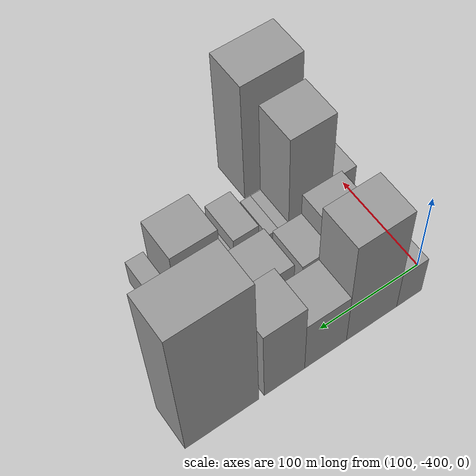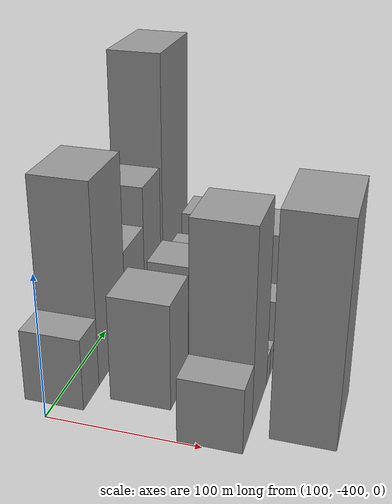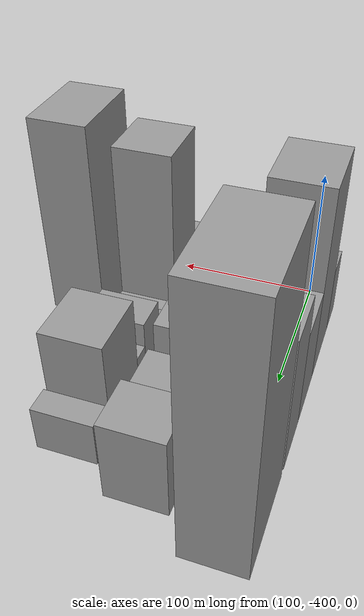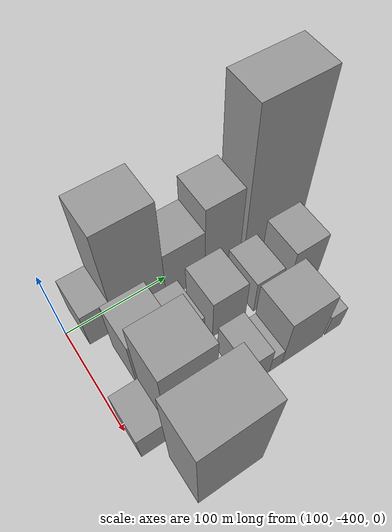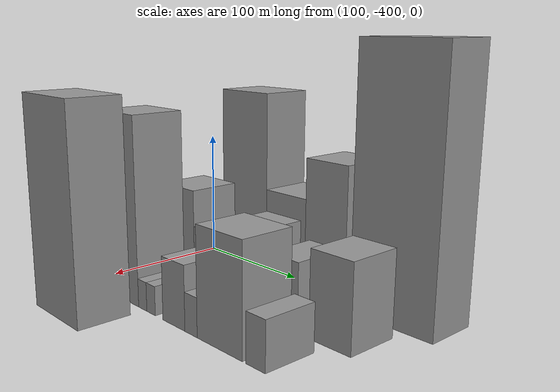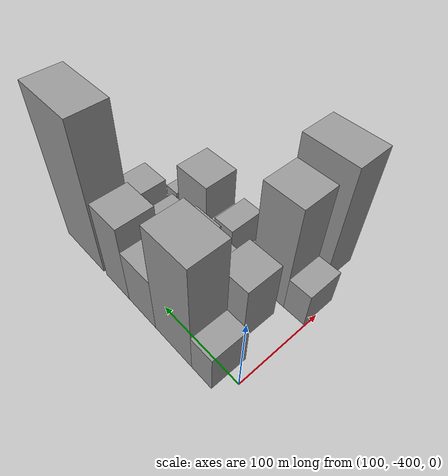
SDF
<sdf version="1.6">
 <world name="default">
  <model name="building_15">
   <static>1</static>
   <pose>100.0000 -374.5829 0 0.000000 0.000000 0.000000</pose>
   <link name="link">
    <pose>0 0 25.50 0 0 0</pose>
    <collision name="collision"><geometry><box><size>40.0000 25.7335 51.0000</size></box></geometry></collision>
    <visual name="visual">
     <cast_shadows>0</cast_shadows>
     <geometry><box><size>40.0000 25.7335 51.0000</size></box></geometry>
     <material>
      <script>
       <uri>model://grey_wall/materials/scripts</uri>
       <uri>model://grey_wall/materials/textures</uri>
       <name>vrc/grey_wall</name>
      </script>
     </material>
    </visual>
   </link>
  </model>
  <model name="building_16">
   <static>1</static>
   <pose>100.0000 -336.2735 0 0.000000 0.000000 0.000000</pose>
   <link name="link">
    <pose>0 0 72.00 0 0 0</pose>
    <collision name="collision"><geometry><box><size>40.0000 50.8852 144.0000</size></box></geometry></collision>
    <visual name="visual">
     <cast_shadows>0</cast_shadows>
     <geometry><box><size>40.0000 50.8852 144.0000</size></box></geometry>
     <material>
      <script>
       <uri>model://grey_wall/materials/scripts</uri>
       <uri>model://grey_wall/materials/textures</uri>
       <name>vrc/grey_wall</name>
      </script>
     </material>
    </visual>
   </link>
  </model>
  <model name="building_17">
   <static>1</static>
   <pose>100.0000 -290.3464 0 0.000000 0.000000 0.000000</pose>
   <link name="link">
    <pose>0 0 36.00 0 0 0</pose>
    <collision name="collision"><geometry><box><size>40.0000 40.9691 72.0000</size></box></geometry></collision>
    <visual name="visual">
     <cast_shadows>0</cast_shadows>
     <geometry><box><size>40.0000 40.9691 72.0000</size></box></geometry>
     <material>
      <script>
       <uri>model://grey_wall/materials/scripts</uri>
       <uri>model://grey_wall/materials/textures</uri>
       <name>vrc/grey_wall</name>
      </script>
     </material>
    </visual>
   </link>
  </model>
  <model name="building_18">
   <static>1</static>
   <pose>100.0000 -250.6649 0 0.000000 0.000000 0.000000</pose>
   <link name="link">
    <pose>0 0 51.00 0 0 0</pose>
    <collision name="collision"><geometry><box><size>40.0000 38.3940 102.0000</size></box></geometry></collision>
    <visual name="visual">
     <cast_shadows>0</cast_shadows>
     <geometry><box><size>40.0000 38.3940 102.0000</size></box></geometry>
     <material>
      <script>
       <uri>model://grey_wall/materials/scripts</uri>
       <uri>model://grey_wall/materials/textures</uri>
       <name>vrc/grey_wall</name>
      </script>
     </material>
    </visual>
   </link>
  </model>
  <model name="building_19">
   <static>1</static>
   <pose>100.0000 -192.8025 0 0.000000 0.000000 0.000000</pose>
   <link name="link">
    <pose>0 0 93.00 0 0 0</pose>
    <collision name="collision"><geometry><box><size>40.0000 67.3308 186.0000</size></box></geometry></collision>
    <visual name="visual">
     <cast_shadows>0</cast_shadows>
     <geometry><box><size>40.0000 67.3308 186.0000</size></box></geometry>
     <material>
      <script>
       <uri>model://grey_wall/materials/scripts</uri>
       <uri>model://grey_wall/materials/textures</uri>
       <name>vrc/grey_wall</name>
      </script>
     </material>
    </visual>
   </link>
  </model>
  <model name="building_66">
   <static>1</static>
   <pose>152.0000 -352.9168 0 0.000000 0.000000 0.000000</pose>
   <link name="link">
    <pose>0 0 37.50 0 0 0</pose>
    <collision name="collision"><geometry><box><size>40.0000 38.4335 75.0000</size></box></geometry></collision>
    <visual name="visual">
     <cast_shadows>0</cast_shadows>
     <geometry><box><size>40.0000 38.4335 75.0000</size></box></geometry>
     <material>
      <script>
       <uri>model://grey_wall/materials/scripts</uri>
       <uri>model://grey_wall/materials/textures</uri>
       <name>vrc/grey_wall</name>
      </script>
     </material>
    </visual>
   </link>
  </model>
  <model name="building_67">
   <static>1</static>
   <pose>152.0000 -319.5123 0 0.000000 0.000000 0.000000</pose>
   <link name="link">
    <pose>0 0 24.00 0 0 0</pose>
    <collision name="collision"><geometry><box><size>40.0000 28.3756 48.0000</size></box></geometry></collision>
    <visual name="visual">
     <cast_shadows>0</cast_shadows>
     <geometry><box><size>40.0000 28.3756 48.0000</size></box></geometry>
     <material>
      <script>
       <uri>model://grey_wall/materials/scripts</uri>
       <uri>model://grey_wall/materials/textures</uri>
       <name>vrc/grey_wall</name>
      </script>
     </material>
    </visual>
   </link>
  </model>
  <model name="building_68">
   <static>1</static>
   <pose>152.0000 -280.1701 0 0.000000 0.000000 0.000000</pose>
   <link name="link">
    <pose>0 0 30.00 0 0 0</pose>
    <collision name="collision"><geometry><box><size>40.0000 34.3088 60.0000</size></box></geometry></collision>
    <visual name="visual">
     <cast_shadows>0</cast_shadows>
     <geometry><box><size>40.0000 34.3088 60.0000</size></box></geometry>
     <material>
      <script>
       <uri>model://grey_wall/materials/scripts</uri>
       <uri>model://grey_wall/materials/textures</uri>
       <name>vrc/grey_wall</name>
      </script>
     </material>
    </visual>
   </link>
  </model>
  <model name="building_69">
   <static>1</static>
   <pose>152.0000 -239.7443 0 0.000000 0.000000 0.000000</pose>
   <link name="link">
    <pose>0 0 24.00 0 0 0</pose>
    <collision name="collision"><geometry><box><size>40.0000 28.5428 48.0000</size></box></geometry></collision>
    <visual name="visual">
     <cast_shadows>0</cast_shadows>
     <geometry><box><size>40.0000 28.5428 48.0000</size></box></geometry>
     <material>
      <script>
       <uri>model://grey_wall/materials/scripts</uri>
       <uri>model://grey_wall/materials/textures</uri>
       <name>vrc/grey_wall</name>
      </script>
     </material>
    </visual>
   </link>
  </model>
  <model name="building_70">
   <static>1</static>
   <pose>152.0000 -198.1770 0 0.000000 0.000000 0.000000</pose>
   <link name="link">
    <pose>0 0 30.00 0 0 0</pose>
    <collision name="collision"><geometry><box><size>40.0000 34.5919 60.0000</size></box></geometry></collision>
    <visual name="visual">
     <cast_shadows>0</cast_shadows>
     <geometry><box><size>40.0000 34.5919 60.0000</size></box></geometry>
     <material>
      <script>
       <uri>model://grey_wall/materials/scripts</uri>
       <uri>model://grey_wall/materials/textures</uri>
       <name>vrc/grey_wall</name>
      </script>
     </material>
    </visual>
   </link>
  </model>
  <model name="building_115">
   <static>1</static>
   <pose>204.0000 -386.1399 0 0.000000 0.000000 0.000000</pose>
   <link name="link">
    <pose>0 0 22.50 0 0 0</pose>
    <collision name="collision"><geometry><box><size>40.0000 25.1601 45.0000</size></box></geometry></collision>
    <visual name="visual">
     <cast_shadows>0</cast_shadows>
     <geometry><box><size>40.0000 25.1601 45.0000</size></box></geometry>
     <material>
      <script>
       <uri>model://grey_wall/materials/scripts</uri>
       <uri>model://grey_wall/materials/textures</uri>
       <name>vrc/grey_wall</name>
      </script>
     </material>
    </visual>
   </link>
  </model>
  <model name="building_116">
   <static>1</static>
   <pose>204.0000 -351.8930 0 0.000000 0.000000 0.000000</pose>
   <link name="link">
    <pose>0 0 67.50 0 0 0</pose>
    <collision name="collision"><geometry><box><size>40.0000 43.3337 135.0000</size></box></geometry></collision>
    <visual name="visual">
     <cast_shadows>0</cast_shadows>
     <geometry><box><size>40.0000 43.3337 135.0000</size></box></geometry>
     <material>
      <script>
       <uri>model://grey_wall/materials/scripts</uri>
       <uri>model://grey_wall/materials/textures</uri>
       <name>vrc/grey_wall</name>
      </script>
     </material>
    </visual>
   </link>
  </model>
  <model name="building_117">
   <static>1</static>
   <pose>204.0000 -325.1141 0 0.000000 0.000000 0.000000</pose>
   <link name="link">
    <pose>0 0 10.50 0 0 0</pose>
    <collision name="collision"><geometry><box><size>40.0000 10.2241 21.0000</size></box></geometry></collision>
    <visual name="visual">
     <cast_shadows>0</cast_shadows>
     <geometry><box><size>40.0000 10.2241 21.0000</size></box></geometry>
     <material>
      <script>
       <uri>model://grey_wall/materials/scripts</uri>
       <uri>model://grey_wall/materials/textures</uri>
       <name>vrc/grey_wall</name>
      </script>
     </material>
    </visual>
   </link>
  </model>
  <model name="building_118">
   <static>1</static>
   <pose>204.0000 -314.8128 0 0.000000 0.000000 0.000000</pose>
   <link name="link">
    <pose>0 0 10.50 0 0 0</pose>
    <collision name="collision"><geometry><box><size>40.0000 10.3785 21.0000</size></box></geometry></collision>
    <visual name="visual">
     <cast_shadows>0</cast_shadows>
     <geometry><box><size>40.0000 10.3785 21.0000</size></box></geometry>
     <material>
      <script>
       <uri>model://grey_wall/materials/scripts</uri>
       <uri>model://grey_wall/materials/textures</uri>
       <name>vrc/grey_wall</name>
      </script>
     </material>
    </visual>
   </link>
  </model>
  <model name="building_119">
   <static>1</static>
   <pose>204.0000 -288.2839 0 0.000000 0.000000 0.000000</pose>
   <link name="link">
    <pose>0 0 22.50 0 0 0</pose>
    <collision name="collision"><geometry><box><size>40.0000 24.6793 45.0000</size></box></geometry></collision>
    <visual name="visual">
     <cast_shadows>0</cast_shadows>
     <geometry><box><size>40.0000 24.6793 45.0000</size></box></geometry>
     <material>
      <script>
       <uri>model://grey_wall/materials/scripts</uri>
       <uri>model://grey_wall/materials/textures</uri>
       <name>vrc/grey_wall</name>
      </script>
     </material>
    </visual>
   </link>
  </model>
  <model name="building_120">
   <static>1</static>
   <pose>204.0000 -269.4626 0 0.000000 0.000000 0.000000</pose>
   <link name="link">
    <pose>0 0 13.50 0 0 0</pose>
    <collision name="collision"><geometry><box><size>40.0000 12.9634 27.0000</size></box></geometry></collision>
    <visual name="visual">
     <cast_shadows>0</cast_shadows>
     <geometry><box><size>40.0000 12.9634 27.0000</size></box></geometry>
     <material>
      <script>
       <uri>model://grey_wall/materials/scripts</uri>
       <uri>model://grey_wall/materials/textures</uri>
       <name>vrc/grey_wall</name>
      </script>
     </material>
    </visual>
   </link>
  </model>
  <model name="building_121">
   <static>1</static>
   <pose>204.0000 -241.2299 0 0.000000 0.000000 0.000000</pose>
   <link name="link">
    <pose>0 0 37.50 0 0 0</pose>
    <collision name="collision"><geometry><box><size>40.0000 43.5019 75.0000</size></box></geometry></collision>
    <visual name="visual">
     <cast_shadows>0</cast_shadows>
     <geometry><box><size>40.0000 43.5019 75.0000</size></box></geometry>
     <material>
      <script>
       <uri>model://grey_wall/materials/scripts</uri>
       <uri>model://grey_wall/materials/textures</uri>
       <name>vrc/grey_wall</name>
      </script>
     </material>
    </visual>
   </link>
  </model>
  <model name="building_122">
   <static>1</static>
   <pose>204.0000 -208.0186 0 0.000000 0.000000 0.000000</pose>
   <link name="link">
    <pose>0 0 16.50 0 0 0</pose>
    <collision name="collision"><geometry><box><size>40.0000 16.9208 33.0000</size></box></geometry></collision>
    <visual name="visual">
     <cast_shadows>0</cast_shadows>
     <geometry><box><size>40.0000 16.9208 33.0000</size></box></geometry>
     <material>
      <script>
       <uri>model://grey_wall/materials/scripts</uri>
       <uri>model://grey_wall/materials/textures</uri>
       <name>vrc/grey_wall</name>
      </script>
     </material>
    </visual>
   </link>
  </model>
  <model name="building_167">
   <static>1</static>
   <pose>256.0000 -351.4266 0 0.000000 0.000000 0.000000</pose>
   <link name="link">
    <pose>0 0 75.00 0 0 0</pose>
    <collision name="collision"><geometry><box><size>40.0000 59.0075 150.0000</size></box></geometry></collision>
    <visual name="visual">
     <cast_shadows>0</cast_shadows>
     <geometry><box><size>40.0000 59.0075 150.0000</size></box></geometry>
     <material>
      <script>
       <uri>model://grey_wall/materials/scripts</uri>
       <uri>model://grey_wall/materials/textures</uri>
       <name>vrc/grey_wall</name>
      </script>
     </material>
    </visual>
   </link>
  </model>
 </world>
</sdf>
